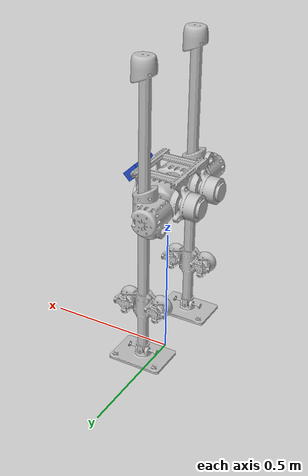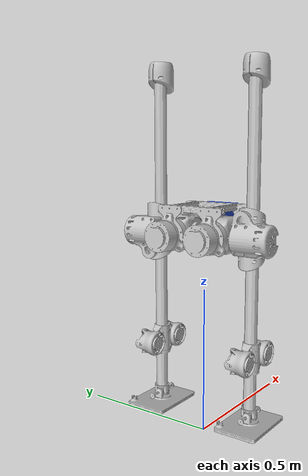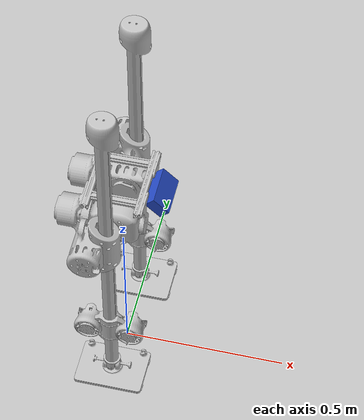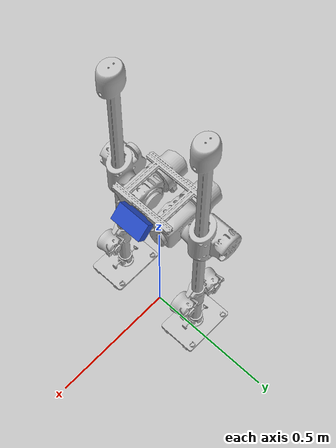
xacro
<?xml version="1.0" encoding="utf-8"?>
<!-- |    This document was autogenerated by xacro from slider_2_0_urdf.urdf           | -->
<!-- |    EDITING THIS FILE BY HAND IS NOT RECOMMENDED                                 | -->

<robot name="slider_2_0_urdf" xmlns:xacro="http://ros.org/wiki/xacro">

  <xacro:include filename="$(find slider_2_0_urdf)/urdf/slider_2_0_.gazebo.xacro"/>

  <xacro:property name="r200_cam_rgb_px" value="0.005"/>
  <xacro:property name="r200_cam_rgb_py" value="0.018"/>
  <xacro:property name="r200_cam_rgb_pz" value="0.013"/>
  <xacro:property name="r200_cam_depth_offset" value="0.01"/>
  <xacro:property name="camera_link" value="0.05" /> <!-- Size of square 'camera' box -->

  <link name="world"/>

  <joint name="base_joint" type="fixed">
    <parent link="world"/>
    <child link="base_link" />
    <origin xyz="0 0 0.1" rpy="0 0 0"/>
  </joint>

  <link name="base_link">
    <inertial>
      <origin rpy="0 0 0" xyz="-0.0765324246620027 4.9441866434881E-09 0.610521382214614"/>
      <mass value="2.02469333344451"/>
      <inertia ixx="0.00376718384406223" ixy="-1.32565020465757E-07" ixz="-4.01564478042334E-06" iyy="0.00209460156447236" iyz="4.40200770634824E-10" izz="0.00255446895074592"/>
    </inertial>
    <visual>
      <origin rpy="0 0 0" xyz="0 0 0"/>
      <geometry>
        <mesh filename="package://slider_2_0_urdf/meshes/base_link.STL"/>
      </geometry>
      <material name="">
        <color rgba="0.752941176470588 0.752941176470588 0.752941176470588 1"/>
      </material>
    </visual>
    <collision>
      <origin rpy="0 0 0" xyz="0 0 0"/>
      <geometry>
        <mesh filename="package://slider_2_0_urdf/meshes/base_link.STL"/>
      </geometry>
    </collision>
  </link>

  <joint name="Left_Roll" type="revolute">
    <origin rpy="0 0 0" xyz="0 0.0749999999999995 0.591116132473436"/>
    <parent link="base_link"/>
    <child link="Left_Pitch_casing"/>
    <axis xyz="-1 0 0"/>
    <limit effort="48" lower="-0.35" upper="1.57" velocity="3.14"/>
  </joint>

  <link name="Left_Pitch_casing">
    <inertial>
      <origin rpy="0 0 0" xyz="-0.00637791780561047 0.000213831384279162 -1.17971270738038E-05"/>
      <mass value="1.12708372672221"/>
      <inertia ixx="0.00127122201055317" ixy="3.251218107481E-06" ixz="-4.35806917879868E-07" iyy="0.00204052239898519" iyz="-1.09023834178273E-05" izz="0.00154465658220456"/>
    </inertial>
    <visual>
      <origin rpy="0 0 0" xyz="0 0 0"/>
      <geometry>
        <mesh filename="package://slider_2_0_urdf/meshes/Left_Pitch_casing.STL"/>
      </geometry>
      <material name="">
        <color rgba="0.752941176470588 0.752941176470588 0.752941176470588 1"/>
      </material>
    </visual>
    <collision>
      <origin rpy="0 0 0" xyz="0 0 0"/>
      <geometry>
        <mesh filename="package://slider_2_0_urdf/meshes/Left_Pitch_casing.STL"/>
      </geometry>
    </collision>
  </link>

  <link name="Left_Slide_Casing">
    <inertial>
      <origin rpy="0 0 0" xyz="-0.0327747516406348 0.122616412056228 -0.00361644928605986"/>
      <mass value="1.04662003082236"/>
      <inertia ixx="0.00177420749171721" ixy="-8.43479504578415E-05" ixz="-8.76701595910206E-06" iyy="0.00185806902329562" iyz="-6.82808782201735E-05" izz="0.000846357923294892"/>
    </inertial>
    <visual>
      <origin rpy="0 0 0" xyz="0 0 0"/>
      <geometry>
        <mesh filename="package://slider_2_0_urdf/meshes/Left_Slide_Casing.STL"/>
      </geometry>
      <material name="">
        <color rgba="0.752941176470588 0.752941176470588 0.752941176470588 1"/>
      </material>
    </visual>
    <collision>
      <origin rpy="0 0 0" xyz="0 0 0"/>
      <geometry>
        <mesh filename="package://slider_2_0_urdf/meshes/Left_Slide_Casing.STL"/>
      </geometry>
    </collision>
  </link>

  <joint name="Left_Pitch" type="continuous">
    <origin rpy="0 0 0" xyz="0 0 0"/>
    <parent link="Left_Pitch_casing"/>
    <child link="Left_Slide_Casing"/>
    <axis xyz="0 -1 0"/>
    <limit effort="18" velocity="28"/>
  </joint>

  <link name="Left_Leg">
    <inertial>
      <origin rpy="0 0 0" xyz="0.00186620898483418 0.000816743884367782 -0.18632048172863"/>
      <mass value="1.85512765759961"/>
      <inertia ixx="0.0211099736585756" ixy="-4.54408700087738E-07" ixz="4.96451706876145E-05" iyy="0.0222717572103878" iyz="-1.07295394858633E-06" izz="0.00176289771304861"/>
    </inertial>
    <visual>
      <origin rpy="0 0 0" xyz="0 0 0"/>
      <geometry>
        <mesh filename="package://slider_2_0_urdf/meshes/Left_Leg.STL"/>
      </geometry>
      <material name="">
        <color rgba="0.752941176470588 0.752941176470588 0.752941176470588 1"/>
      </material>
    </visual>
    <collision>
      <origin rpy="0 0 0" xyz="0 0 0"/>
      <geometry>
        <mesh filename="package://slider_2_0_urdf/meshes/Left_Leg.STL"/>
      </geometry>
    </collision>
  </link>

  <joint name="Left_Slide" type="prismatic">
    <origin rpy="0 0 0" xyz="0 0.104199980302619 0"/>
    <parent link="Left_Slide_Casing"/>
    <child link="Left_Leg"/>
    <axis xyz="0 0 1"/>
    <limit effort="315" lower="-0.38" upper="0.41" velocity="0.56"/>
  </joint>

  <link name="Left_Foot_Pitch_Link">
    <inertial>
      <origin rpy="0 0 0" xyz="1.21192130775327E-08 -2.49876605518118E-09 -1.27517560954971E-08"/>
      <mass value="0.0141283854462189"/>
      <inertia ixx="1.59442165134791E-06" ixy="-6.21556747255079E-13" ixz="4.2489645445931E-13" iyy="1.60514807015652E-06" iyz="-2.53520076420128E-13" izz="1.51174921794827E-06"/>
    </inertial>
    <visual>
      <origin rpy="0 0 0" xyz="0 0 0"/>
      <geometry>
        <mesh filename="package://slider_2_0_urdf/meshes/Left_Foot_Pitch_Link.STL"/>
      </geometry>
      <material name="">
        <color rgba="0.752941176470588 0.752941176470588 0.752941176470588 1"/>
      </material>
    </visual>
    <collision>
      <origin rpy="0 0 0" xyz="0 0 0"/>
      <geometry>
        <mesh filename="package://slider_2_0_urdf/meshes/Left_Foot_Pitch_Link.STL"/>
      </geometry>
    </collision>
  </link>

  <joint name="Left_Foot_Pitch" type="continuous">
    <origin rpy="0 0 0" xyz="0 0 -0.591116132473436"/>
    <parent link="Left_Leg"/>
    <child link="Left_Foot_Pitch_Link"/>
    <axis xyz="0 -1 0"/>
    <limit effort="3" lower="-20" upper="20" velocity="28"/>
  </joint>

  <link name="Left_Foot">
    <inertial>
      <origin rpy="0 0 0" xyz="0.000859432497047443 0.00107826646655129 -0.0267222413448819"/>
      <mass value="0.412868497007575"/>
      <inertia ixx="0.000567578914748558" ixy="4.94015307643317E-09" ixz="5.19255230250368E-10" iyy="0.00109766785621675" iyz="-2.46630968177259E-06" izz="0.00164597144538111"/>
    </inertial>
    <visual>
      <origin rpy="0 0 0" xyz="0 0 0"/>
      <geometry>
        <mesh filename="package://slider_2_0_urdf/meshes/Left_Foot.STL"/>
      </geometry>
      <material name="">
        <color rgba="0.752941176470588 0.752941176470588 0.752941176470588 1"/>
      </material>
    </visual>
    <collision>
      <origin rpy="0 0 0" xyz="0 0 0"/>
      <geometry>
        <mesh filename="package://slider_2_0_urdf/meshes/Left_Foot.STL"/>
      </geometry>
    </collision>
  </link>

  <joint name="Left_Foot_Roll" type="continuous">
    <origin rpy="0 0 0" xyz="0 0 0"/>
    <parent link="Left_Foot_Pitch_Link"/>
    <child link="Left_Foot"/>
    <axis xyz="1 0 0"/>
    <limit effort="3" lower="-20" upper="20" velocity="28"/>
  </joint>

  <link name="Right_Pitch_casing">
    <inertial>
      <origin rpy="0 0 0" xyz="-0.00647797385747184 -0.000213976601378396 7.57552639663039E-06"/>
      <mass value="1.12708290379694"/>
      <inertia ixx="0.00127122339932927" ixy="-3.25951853220237E-06" ixz="3.70356391392349E-07" iyy="0.00204075639791425" iyz="-1.08915409219137E-06" izz="0.00154441812776377"/>
    </inertial>
    <visual>
      <origin rpy="0 0 0" xyz="0 0 0"/>
      <geometry>
        <mesh filename="package://slider_2_0_urdf/meshes/Right_Pitch_casing.STL"/>
      </geometry>
      <material name="">
        <color rgba="0.752941176470588 0.752941176470588 0.752941176470588 1"/>
      </material>
    </visual>
    <collision>
      <origin rpy="0 0 0" xyz="0 0 0"/>
      <geometry>
        <mesh filename="package://slider_2_0_urdf/meshes/Right_Pitch_casing.STL"/>
      </geometry>
    </collision>
  </link>

  <joint name="Right_Roll" type="revolute">
    <origin rpy="0 0 0" xyz="0 -0.0750000000000001 0.591116132473436"/>
    <parent link="base_link"/>
    <child link="Right_Pitch_casing"/>
    <axis xyz="-0.999999999999998 0 0"/>
    <limit effort="48" lower="-0.35" upper="1.57" velocity="3.14"/>
  </joint>

  <link name="Right_Slide_Casing">
    <inertial>
      <origin rpy="0 0 0" xyz="-0.0328747660964546 -0.122663946382931 0.0011908647649936"/>
      <mass value="1.04661946807414"/>
      <inertia ixx="0.00177420810309571" ixy="8.41579473719035E-05" ixz="1.04335551678863E-05" iyy="0.0018603724204831" iyz="-4.8223364131695E-05" izz="0.000844052487985306"/>
    </inertial>
    <visual>
      <origin rpy="0 0 0" xyz="0 0 0"/>
      <geometry>
        <mesh filename="package://slider_2_0_urdf/meshes/Right_Slide_Casing.STL"/>
      </geometry>
      <material name="">
        <color rgba="0.752941176470588 0.752941176470588 0.752941176470588 1"/>
      </material>
    </visual>
    <collision>
      <origin rpy="0 0 0" xyz="0 0 0"/>
      <geometry>
        <mesh filename="package://slider_2_0_urdf/meshes/Right_Slide_Casing.STL"/>
      </geometry>
    </collision>
  </link>

  <joint name="Right_Pitch" type="continuous">
    <origin rpy="0 0 0" xyz="0 0 0"/>
    <parent link="Right_Pitch_casing"/>
    <child link="Right_Slide_Casing"/>
    <axis xyz="0 1 0"/>
    <limit effort="18" velocity="28"/>
  </joint>

  <link name="Right_Leg">
    <inertial>
      <origin rpy="0 0 0" xyz="0.00186623868204826 0.000816728951440998 -0.1863204333875"/>
      <mass value="1.85512727949778"/>
      <inertia ixx="0.0211099734460687" ixy="-4.53803560950004E-07" ixz="4.9645491041883E-05" iyy="0.0222717558596174" iyz="-1.07278111285694E-06" izz="0.00176289645458729"/>
    </inertial>
    <visual>
      <origin rpy="0 0 0" xyz="0 0 0"/>
      <geometry>
        <mesh filename="package://slider_2_0_urdf/meshes/Right_Leg.STL"/>
      </geometry>
      <material name="">
        <color rgba="0.752941176470588 0.752941176470588 0.752941176470588 1"/>
      </material>
    </visual>
    <collision>
      <origin rpy="0 0 0" xyz="0 0 0"/>
      <geometry>
        <mesh filename="package://slider_2_0_urdf/meshes/Right_Leg.STL"/>
      </geometry>
    </collision>
  </link>

  <joint name="Right_Slide" type="prismatic">
    <origin rpy="0 0 0" xyz="0 -0.104199980302619 0"/>
    <parent link="Right_Slide_Casing"/>
    <child link="Right_Leg"/>
    <axis xyz="0 0 1"/>
    <limit effort="315" lower="-0.38" upper="0.41" velocity="0.56"/>
  </joint>
  <link name="Right_Foot_Pitch_Link">
    <inertial>
      <origin rpy="0 0 0" xyz="1.13095142105502E-08 -2.21952002055215E-08 -1.27526379456455E-08"/>
      <mass value="0.014128385446219"/>
      <inertia ixx="1.59442165134791E-06" ixy="-6.21556748216398E-13" ixz="4.24896453989181E-13" iyy="1.60514807015652E-06" iyz="-2.5352007436654E-13" izz="1.51174921794827E-06"/>
    </inertial>
    <visual>
      <origin rpy="0 0 0" xyz="0 0 0"/>
      <geometry>
        <mesh filename="package://slider_2_0_urdf/meshes/Right_Foot_Pitch_Link.STL"/>
      </geometry>
      <material name="">
        <color rgba="0.752941176470588 0.752941176470588 0.752941176470588 1"/>
      </material>
    </visual>
    <collision>
      <origin rpy="0 0 0" xyz="0 0 0"/>
      <geometry>
        <mesh filename="package://slider_2_0_urdf/meshes/Right_Foot_Pitch_Link.STL"/>
      </geometry>
    </collision>
  </link>
  <joint name="Right_Foot_Pitch" type="continuous">
    <origin rpy="0 0 0" xyz="0 0 -0.591116132473436"/>
    <parent link="Right_Leg"/>
    <child link="Right_Foot_Pitch_Link"/>
    <axis xyz="0 1 0"/>
    <limit effort="3" lower="-20" upper="20" velocity="28"/>
  </joint>
  <link name="Right_Foot">
    <inertial>
      <origin rpy="0 0 0" xyz="0.000859431687348554 0.00107824677010171 -0.0267222413457578"/>
      <mass value="0.412868497007574"/>
      <inertia ixx="0.000567578914748551" ixy="4.94015307639139E-09" ixz="5.19255230283473E-10" iyy="0.00109766785621674" iyz="-2.46630968177226E-06" izz="0.0016459714453811"/>
    </inertial>
    <visual>
      <origin rpy="0 0 0" xyz="0 0 0"/>
      <geometry>
        <mesh filename="package://slider_2_0_urdf/meshes/Right_Foot.STL"/>
      </geometry>
      <material name="">
        <color rgba="0.752941176470588 0.752941176470588 0.752941176470588 1"/>
      </material>
    </visual>
    <collision>
      <origin rpy="0 0 0" xyz="0 0 0"/>
      <geometry>
        <mesh filename="package://slider_2_0_urdf/meshes/Right_Foot.STL"/>
      </geometry>
    </collision>
  </link>
  <joint name="Right_Foot_Roll" type="continuous">
    <origin rpy="0 0 0" xyz="0 0 0"/>
    <parent link="Right_Foot_Pitch_Link"/>
    <child link="Right_Foot"/>
    <axis xyz="1 0 0"/>
    <limit effort="3" lower="-20" upper="20" velocity="28"/>
  </joint>

  <joint name="imu_joint" type="fixed">
    <parent link="base_link"/>
    <child link="imu_link"/>
    <origin xyz="-0.0765324246620027 4.9441866434881E-09 0.610521382214614" rpy="0 0 0"/>
  </joint>

  <link name="imu_link"/>

  <joint name="camera_joint" type="fixed">
    <axis xyz="0 0 0" />
    <!--origin xyz="0.12 0 0.65" rpy="0 0.87  0"/-->
    <origin xyz="0.12 0 0.65" rpy="0 0.7854 0"/>
    <parent link="base_link"/>
    <child link="camera_link"/>
  </joint>

  <!-- Camera -->
  <link name="camera_link">
    <visual>
    <geometry>
      <box size="0.064 0.121 0.0381" />
    </geometry>
    <material name="Blue" />
  </visual>
  </link>

     <!-- The point cloud pose error is displayed in RVIZ, and an empty link and an empty joint are added here to adjust the point cloud tf pose -->
  <link name="camera_link_fake"></link>
  <joint name="camera_joint_fake" type="fixed">
    <origin xyz="0 0 0" rpy="-1.5708 0 -1.5708 "/>
    <parent link="camera_link"/>
    <child link="camera_link_fake"/>
  </joint>

</robot>
